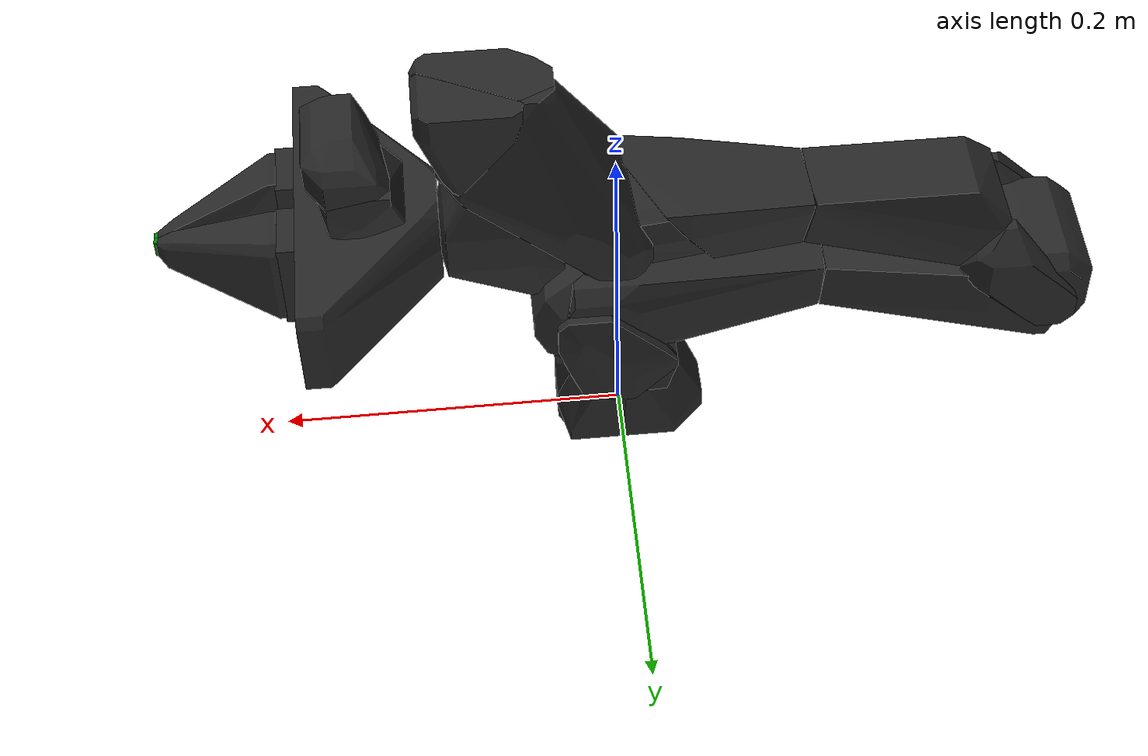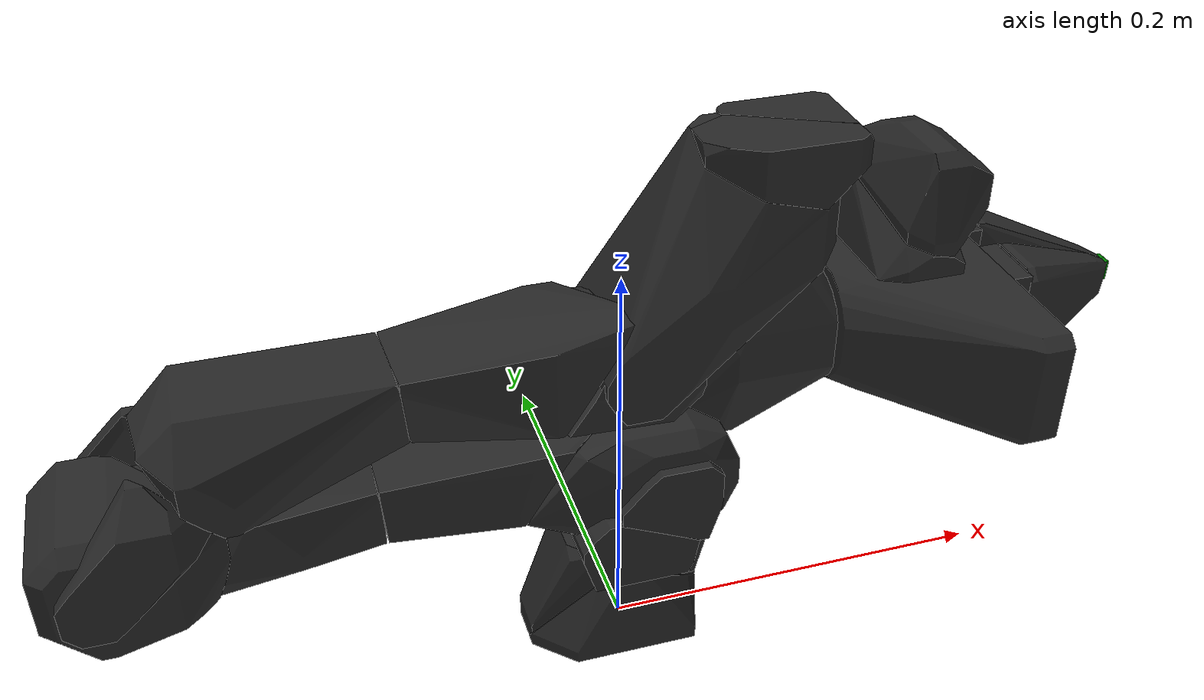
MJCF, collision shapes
<mujoco model="wxai">
  <compiler angle="radian"/>
  <visual>
    <headlight diffuse="0.8 0.8 0.8" ambient="0.3 0.3 0.3" specular="0 0 0"/>
    <scale contactwidth="0.05" contactheight="0.02" forcewidth="0.03"/>
  </visual>
  <option impratio="10" cone="elliptic"/>

  <default>
    <mesh maxhullvert="64"/>
    <default class="visual">
      <geom type="mesh" contype="0" conaffinity="0" group="1" density="0" material="trossen_material"/>
    </default>
    <default class="collision">
      <geom type="mesh" group="3" condim="3" friction="1 5e-3 5e-4" solref=".01 1" rgba="0.15 0.15 0.15 1"/>
      <default class="gripper_collision">
        <geom condim="6"/>
      </default>
    </default>
  </default>

  <asset>
    <texture type="2d" file="assets/materials/1k_textures/trossen_BaseColor.png"/>
    <material name="trossen_material" texture="trossen_BaseColor"/>
    <mesh name="base_link" file="assets/meshes/wxai/base_link.obj"/>
    <mesh name="link_1" file="assets/meshes/wxai/link_1.obj"/>
    <mesh name="link_2" file="assets/meshes/wxai/link_2.obj"/>
    <mesh name="link_3" file="assets/meshes/wxai/link_3.obj"/>
    <mesh name="link_4" file="assets/meshes/wxai/link_4.obj"/>
    <mesh name="link_5" file="assets/meshes/wxai/link_5.obj"/>
    <mesh name="link_6" file="assets/meshes/wxai/link_6.obj"/>
    <mesh name="carriage_right" file="assets/meshes/wxai/carriage_right.obj"/>
    <mesh name="carriage_left" file="assets/meshes/wxai/carriage_left.obj"/>
    <mesh name="camera_mount_d405" file="assets/meshes/d405/camera_mount_d405.obj"/>
    <mesh name="d405" content_type="model/stl" file="assets/meshes/d405/d405.stl" scale="0.001 0.001 0.001"/>
    <mesh name="gripper_left" file="assets/meshes/wxai/gripper_left.obj"/>
    <mesh name="gripper_right" file="assets/meshes/wxai/gripper_right.obj"/>
    <mesh name="base_link_collision" file="assets/meshes/wxai/base_link_collision.obj"/>
    <mesh name="base_link_collision.001" file="assets/meshes/wxai/base_link_collision.001.obj"/>
    <mesh name="base_link_collision.002" file="assets/meshes/wxai/base_link_collision.002.obj"/>
    <mesh name="base_link_collision.003" file="assets/meshes/wxai/base_link_collision.003.obj"/>
    <mesh name="camera_mount_d405_collision" file="assets/meshes/d405/camera_mount_d405_collision.obj"/>
    <mesh name="camera_mount_d405_collision.001" file="assets/meshes/d405/camera_mount_d405_collision.001.obj"/>
    <mesh name="carriage_left_collision" file="assets/meshes/wxai/carriage_left_collision.obj"/>
    <mesh name="carriage_right_collision" file="assets/meshes/wxai/carriage_right_collision.obj"/>
    <mesh name="gripper_left_collision" file="assets/meshes/wxai/gripper_left_collision.obj"/>
    <mesh name="gripper_right_collision" file="assets/meshes/wxai/gripper_right_collision.obj"/>
    <mesh name="link_1_collision" file="assets/meshes/wxai/link_1_collision.obj"/>
    <mesh name="link_1_collision.001" file="assets/meshes/wxai/link_1_collision.001.obj"/>
    <mesh name="link_1_collision.002" file="assets/meshes/wxai/link_1_collision.002.obj"/>
    <mesh name="link_1_collision.003" file="assets/meshes/wxai/link_1_collision.003.obj"/>
    <mesh name="link_2_collision" file="assets/meshes/wxai/link_2_collision.obj"/>
    <mesh name="link_2_collision.001" file="assets/meshes/wxai/link_2_collision.001.obj"/>
    <mesh name="link_2_collision.002" file="assets/meshes/wxai/link_2_collision.002.obj"/>
    <mesh name="link_2_collision.003" file="assets/meshes/wxai/link_2_collision.003.obj"/>
    <mesh name="link_3_collision" file="assets/meshes/wxai/link_3_collision.obj"/>
    <mesh name="link_3_collision.001" file="assets/meshes/wxai/link_3_collision.001.obj"/>
    <mesh name="link_3_collision.002" file="assets/meshes/wxai/link_3_collision.002.obj"/>
    <mesh name="link_3_collision.003" file="assets/meshes/wxai/link_3_collision.003.obj"/>
    <mesh name="link_3_collision.004" file="assets/meshes/wxai/link_3_collision.004.obj"/>
    <mesh name="link_4_collision" file="assets/meshes/wxai/link_4_collision.obj"/>
    <mesh name="link_4_collision.001" file="assets/meshes/wxai/link_4_collision.001.obj"/>
    <mesh name="link_4_collision.002" file="assets/meshes/wxai/link_4_collision.002.obj"/>
    <mesh name="link_5_collision" file="assets/meshes/wxai/link_5_collision.obj"/>
    <mesh name="link_6_collision" file="assets/meshes/wxai/link_6_collision.obj"/>
  </asset>

  <worldbody>
    <body name="base_link">
      <inertial pos="-0.00014175 -5.228e-05 0.0317518" quat="0.708444 0.00673042 0.00910019 0.705677" mass="0.459699"
        diaginertia="0.000448963 0.000416701 0.000213926"/>
      <geom class="visual" mesh="base_link"/>
      <geom class="collision" mesh="base_link_collision"/>
      <geom class="collision" mesh="base_link_collision.001"/>
      <geom class="collision" mesh="base_link_collision.002"/>
      <geom class="collision" mesh="base_link_collision.003"/>
      <body name="link_1" pos="0 0 0.05725">
        <inertial pos="-0.00011075 0.00171176 0.0204459" quat="0.313955 0.305238 -0.643575 0.627752" mass="0.152704"
          diaginertia="0.000203432 0.000173907 8.3521e-05"/>
        <joint name="joint_0" axis="0 0 1" range="-3.05433 3.05433" actuatorfrcrange="-27 27" damping="14.17367"
          armature="0.844846" frictionloss="0.0"/>
        <geom class="visual" mesh="link_1"/>
        <geom class="collision" mesh="link_1_collision"/>
        <geom class="collision" mesh="link_1_collision.001"/>
        <geom class="collision" mesh="link_1_collision.002"/>
        <geom class="collision" mesh="link_1_collision.003"/>
        <body name="link_2" pos="0.02 0 0.04625">
          <inertial pos="-0.131215 -0.00292583 0.00021345" quat="-0.00123582 0.706546 -0.00109575 0.707665"
            mass="1.15316" diaginertia="0.0179449 0.0173612 0.00102628"/>
          <joint name="joint_1" axis="0 1 0" range="0 3.14159" actuatorfrcrange="-27 27" damping="8.0188"
            armature="0.094783" frictionloss="0.0"/>
          <geom class="visual" mesh="link_2"/>
          <geom class="collision" mesh="link_2_collision"/>
          <geom class="collision" mesh="link_2_collision.001"/>
          <geom class="collision" mesh="link_2_collision.002"/>
          <geom class="collision" mesh="link_2_collision.003"/>
          <body name="link_3" pos="-0.264 0 0">
            <inertial pos="0.180836 -0.0009409 0.0555494" quat="0.0103901 0.669684 -0.0033175 0.742566" mass="0.686666"
              diaginertia="0.00566898 0.00547578 0.00059316"/>
            <joint name="joint_2" axis="0 -1 0" range="0 2.35619" actuatorfrcrange="-27 27" damping="0.725663"
              armature="0.0" frictionloss="0.1"/>
            <geom class="visual" mesh="link_3"/>
            <geom class="collision" mesh="link_3_collision"/>
            <geom class="collision" mesh="link_3_collision.001"/>
            <geom class="collision" mesh="link_3_collision.002"/>
            <geom class="collision" mesh="link_3_collision.003"/>
            <geom class="collision" mesh="link_3_collision.004"/>
            <body name="link_4" pos="0.245 0 0.06">
              <inertial pos="0.0579784 0.00027145 0.0588445" quat="0.948688 0.0346237 0.307828 0.0635164"
                mass="0.457899" diaginertia="0.000670827 0.000661455 0.000288648"/>
              <joint name="joint_3" axis="0 -1 0" range="-1.5708 1.5708" actuatorfrcrange="-7 7" damping="2.315707"
                armature="0.131812" frictionloss="0.004603"/>
              <geom class="visual" mesh="link_4"/>
              <geom class="collision" mesh="link_4_collision"/>
              <geom class="collision" mesh="link_4_collision.001"/>
              <geom class="collision" mesh="link_4_collision.002"/>
              <body name="link_5" pos="0.06775 0 0.0455">
                <inertial pos="0.00412447 -1.138e-05 -0.0428318" quat="0.496144 0.502128 0.503595 0.498098"
                  mass="0.366939" diaginertia="0.000320622 0.00026751 0.000189108"/>
                <joint name="joint_4" axis="0 0 -1" range="-1.5708 1.5708" actuatorfrcrange="-7 7" damping="2.368174"
                  armature="0.138205"/>
                <geom class="visual" mesh="link_5"/>
                <geom class="collision" mesh="link_5_collision"/>
                <body name="link_6" pos="0.02895 0 -0.0455">
                  <inertial pos="0.0457277 -7.26e-06 1.402e-05" quat="0.500491 0.4997 -0.500266 0.499542"
                    mass="0.554693" diaginertia="0.001086 0.000824291 0.000487589"/>
                  <joint name="joint_5" axis="1 0 0" range="-3.14159 3.14159" actuatorfrcrange="-7 7" damping="0.684856"
                    armature="0.039831" frictionloss="0.0"/>
                  <site name="ee_gripper_link" pos="0.156062 0 0" size="0.01" type="sphere" rgba="1 0 0 1" group="5"/>
                  <geom class="visual" mesh="link_6"/>
                  <geom class="collision" mesh="link_6_collision"/>
                  <body name="camera_mount_d405" pos="0.012 0 0">
                    <inertial pos="0.0302338 0.00679835 0.0500669" quat="0.501514 0.851949 0.0948108 -0.116954"
                      mass="0.0451801" diaginertia="3.52003e-05 2.55005e-05 1.80592e-05"/>
                    <geom class="visual" mesh="camera_mount_d405"/>
                    <geom class="collision" mesh="camera_mount_d405_collision"/>
                    <geom class="collision" mesh="camera_mount_d405_collision.001"/>
                    <body name="camera_link" pos="0.046650 0.009 0.054272" quat="0.984808 0 0.173648 0">
                      <inertial pos="0 0 0" mass="0.072" diaginertia="2.117e-05 1.3758e-05 1.3758e-05"/>
                      <geom pos="0.0038 -0.009 0" quat="0.5 0.5 0.5 0.5" class="visual" mesh="d405"/>
                      <geom class="collision" type="box" size="0.0115 0.021 0.021" pos="-0.0078 -0.009 0"/>
                      <camera name="wrist_cam" pos="0 0 0" quat="0.5 0.5 -0.5 -0.5" focal="1.93e-3 1.93e-3"
                        resolution="1280 720" sensorsize="3896e-6 2140e-6"/>
                    </body>
                  </body>
                  <body name="carriage_right" pos="0.0865 -0.023 0">
                    <inertial pos="-0.00889602 0.00403514 0.00457901" quat="0.616415 0.778591 0.0236991 -0.115186"
                      mass="0.0503631" diaginertia="1.77614e-05 1.40157e-05 5.27289e-06"/>
                    <joint name="right_carriage_joint" axis="0 -1 0" type="slide" range="-0.01 0.045"
                      actuatorfrcrange="-400 400" damping="2.373963" armature="2.574872" frictionloss="0.1"/>
                    <geom class="visual" mesh="carriage_right"/>
                    <geom class="collision" mesh="carriage_right_collision"/>
                    <body name="gripper_right">
                      <inertial pos="0.0189399 0.00901216 -0.00215461" quat="0.382396 0.419236 0.596564 0.567562"
                        mass="0.0309079" diaginertia="1.60975e-05 1.18601e-05 6.44247e-06"/>
                      <geom class="visual" mesh="gripper_right"/>
                      <geom class="gripper_collision" mesh="gripper_right_collision" pos="0 -0.00154 0"/>
                      <geom class="gripper_collision" type="box" size="0.005 0.016 0.028" pos="-0.004 0 0"/>
                      <geom name="gripper_right_pad" class="gripper_collision" type="box" size="0.008 0.002 0.005"
                        pos="0.0615 0.021 0" rgba="0 0.5 0 0.5" group="4"/>
                      <geom class="gripper_collision" type="sphere" size="0.001" pos="0.062 0.0223 -0.005"/>
                      <geom class="gripper_collision" type="sphere" size="0.001" pos="0.067 0.0223 0"/>
                      <geom class="gripper_collision" type="sphere" size="0.001" pos="0.062 0.0223 0.005"/>
                    </body>
                  </body>
                  <body name="carriage_left" pos="0.0865 0.023 0">
                    <inertial pos="-0.00889602 -0.00403515 -0.00457908" quat="0.616415 0.778591 0.0236991 -0.115186"
                      mass="0.0503631" diaginertia="1.77614e-05 1.40157e-05 5.27289e-06"/>
                    <joint name="left_carriage_joint" axis="0 1 0" type="slide" range="-0.01 0.045"
                      actuatorfrcrange="-400 400" damping="10.70" armature="0.0005" frictionloss="0.0180"/>
                    <geom class="visual" mesh="carriage_left"/>
                    <geom class="collision" mesh="carriage_left_collision"/>
                    <body name="gripper_left">
                      <inertial pos="0.0189399 -0.00901223 -0.00215453" quat="0.567562 0.596564 0.419236 0.382396"
                        mass="0.0309079" diaginertia="1.60975e-05 1.18601e-05 6.44247e-06"/>
                      <geom class="visual" mesh="gripper_left"/>
                      <geom class="gripper_collision" mesh="gripper_left_collision" pos="0 0.00154 0"/>
                      <geom class="gripper_collision" type="box" size="0.005 0.016 0.028" pos="-0.004 0 0"/>
                      <geom name="gripper_left_pad" class="gripper_collision" type="box" size="0.008 0.002 0.005"
                        pos="0.0615 -0.021 0" rgba="0 0.5 0 0.5" group="4"/>
                      <geom class="gripper_collision" type="sphere" size="0.001" pos="0.062 -0.0223 -0.005"/>
                      <geom class="gripper_collision" type="sphere" size="0.001" pos="0.067 -0.0223 0"/>
                      <geom class="gripper_collision" type="sphere" size="0.001" pos="0.062 -0.0223 0.005"/>
                    </body>
                  </body>
                </body>
              </body>
            </body>
          </body>
        </body>
      </body>
    </body>
  </worldbody>

  <contact>
    <exclude body1="base_link" body2="link_1"/>
    <exclude body1="link_3" body2="link_5"/>
  </contact>

  <equality>
    <joint joint1="left_carriage_joint" joint2="right_carriage_joint" polycoef="0 1 0 0 0"/>
  </equality>

  <keyframe>
    <key time="199.554" qpos="-1.5359e-26 -0.00231776 1.10539 0.652472 -0.000250995 0.000167313 0.02178 0.0217803"
      qvel="-1.5359e-23 5.95298e-17 3.40214e-14 -2.59294e-14 -5.72012e-18 -6.42267e-18 7.3271e-16 6.88375e-16"
      ctrl="0 0 1.10741 0.644028 0 0 0.02178"/>
  </keyframe>

  <actuator>
    <position name="joint_0" joint="joint_0" kp="65.092177" forcerange="-35 35" ctrlrange="-3.05433 3.05433"/>
    <position name="joint_1" joint="joint_1" kp="83.698740" forcerange="-144 144" ctrlrange="0 3.14159"/>
    <position name="joint_2" joint="joint_2" kp="115.808333" forcerange="-59 59" ctrlrange="0 2.35619"/>
    <position name="joint_3" joint="joint_3" kp="45.972562" forcerange="-22 22" ctrlrange="-1.5708 1.5708"/>
    <position name="joint_4" joint="joint_4" kp="11.364627" forcerange="-35 35" ctrlrange="-1.5708 1.5708"/>
    <position name="joint_5" joint="joint_5" kp="4.388846" forcerange="-35 35" ctrlrange="-3.14159 3.14159"/>
    <position name="right_carriage_joint" joint="right_carriage_joint" kp="339.018069" forcerange="-35 35"
      ctrlrange="-0.002 0.045"/>
  </actuator>
</mujoco>
